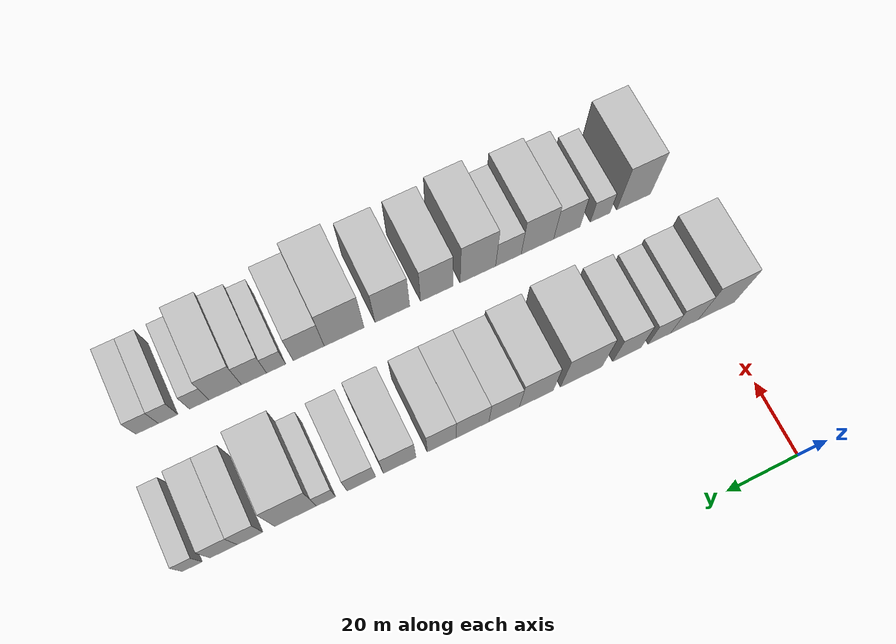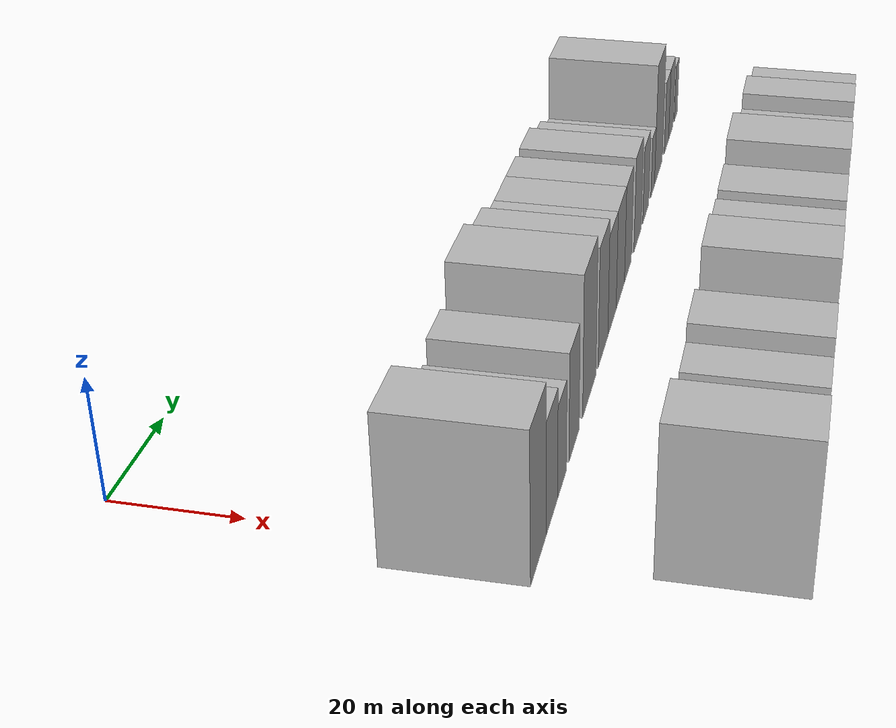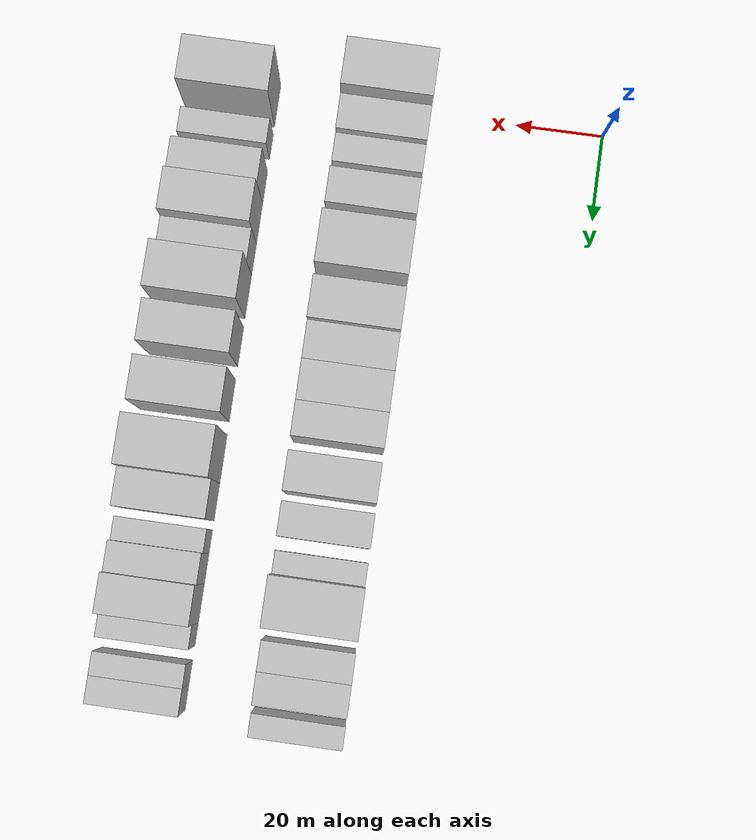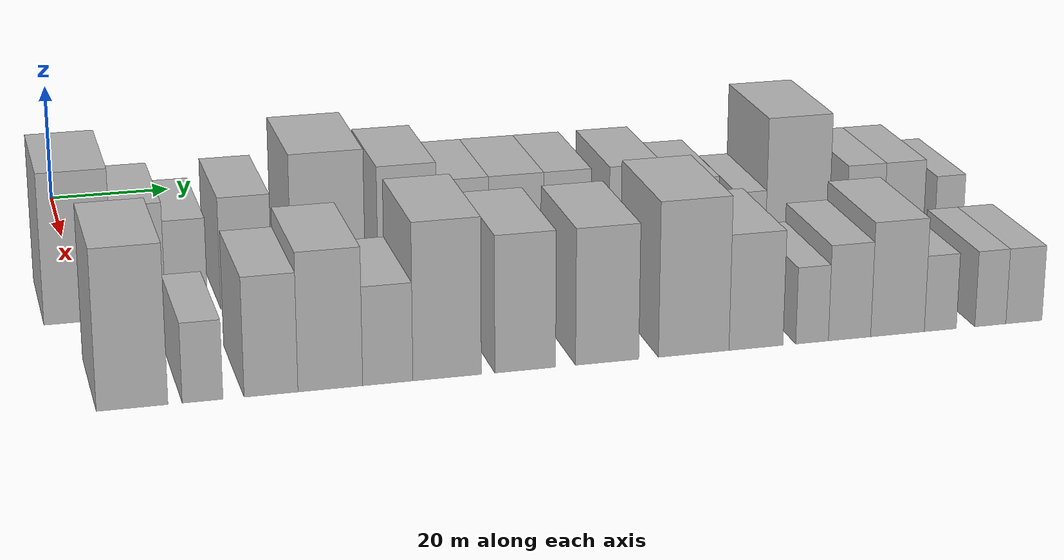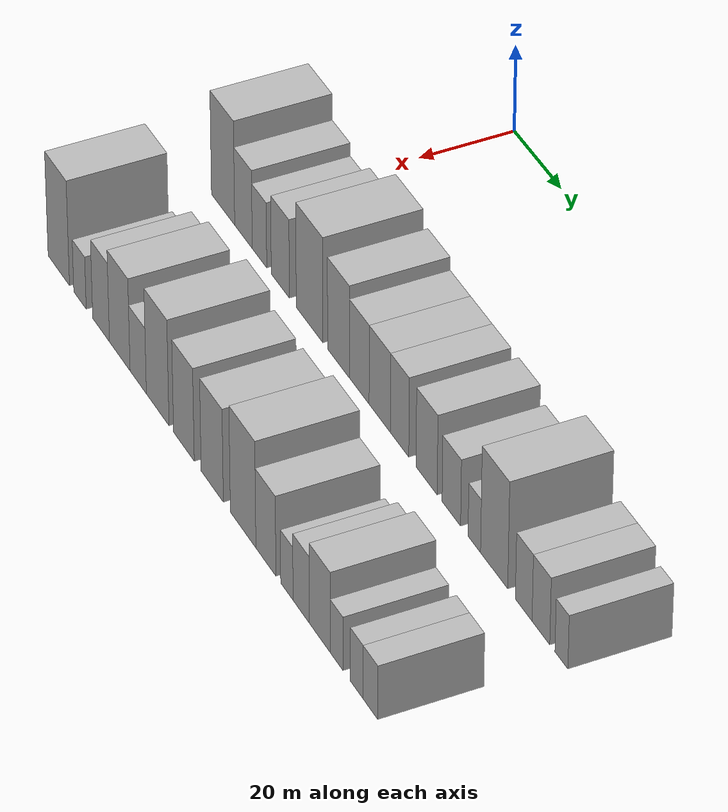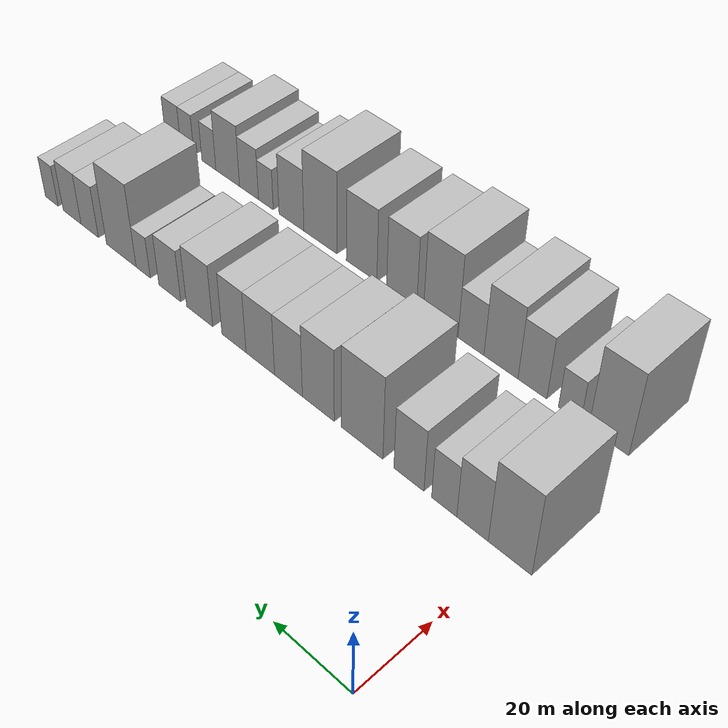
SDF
<sdf version="1.6">
 <world name="default">
  <model name="building_32">
   <static>1</static>
   <pose>50.0000 -0.8902 0 0.000000 0.000000 0.000000</pose>
   <link name="link">
    <pose>0 0 12.00 0 0 0</pose>
    <collision name="collision"><geometry><box><size>20.0000 10.5216 24.0000</size></box></geometry></collision>
    <visual name="visual">
     <cast_shadows>0</cast_shadows>
     <geometry><box><size>20.0000 10.5216 24.0000</size></box></geometry>
     <material>
      <script>
       <uri>model://HANNAS_wall/materials/scripts</uri>
       <uri>model://HANNAS_wall/materials/textures</uri>
       <name>vrc/HANNAS_wall</name>
      </script>
     </material>
    </visual>
   </link>
  </model>
  <model name="building_33">
   <static>1</static>
   <pose>50.0000 8.3077 0 0.000000 0.000000 0.000000</pose>
   <link name="link">
    <pose>0 0 9.00 0 0 0</pose>
    <collision name="collision"><geometry><box><size>20.0000 7.8744 18.0000</size></box></geometry></collision>
    <visual name="visual">
     <cast_shadows>0</cast_shadows>
     <geometry><box><size>20.0000 7.8744 18.0000</size></box></geometry>
     <material>
      <script>
       <uri>model://HANNAS_wall/materials/scripts</uri>
       <uri>model://HANNAS_wall/materials/textures</uri>
       <name>vrc/HANNAS_wall</name>
      </script>
     </material>
    </visual>
   </link>
  </model>
  <model name="building_34">
   <static>1</static>
   <pose>50.0000 15.4717 0 0.000000 0.000000 0.000000</pose>
   <link name="link">
    <pose>0 0 7.50 0 0 0</pose>
    <collision name="collision"><geometry><box><size>20.0000 6.4537 15.0000</size></box></geometry></collision>
    <visual name="visual">
     <cast_shadows>0</cast_shadows>
     <geometry><box><size>20.0000 6.4537 15.0000</size></box></geometry>
     <material>
      <script>
       <uri>model://HANNAS_wall/materials/scripts</uri>
       <uri>model://HANNAS_wall/materials/textures</uri>
       <name>vrc/HANNAS_wall</name>
      </script>
     </material>
    </visual>
   </link>
  </model>
  <model name="building_35">
   <static>1</static>
   <pose>50.0000 24.6957 0 0.000000 0.000000 0.000000</pose>
   <link name="link">
    <pose>0 0 9.00 0 0 0</pose>
    <collision name="collision"><geometry><box><size>20.0000 7.9942 18.0000</size></box></geometry></collision>
    <visual name="visual">
     <cast_shadows>0</cast_shadows>
     <geometry><box><size>20.0000 7.9942 18.0000</size></box></geometry>
     <material>
      <script>
       <uri>model://HANNAS_wall/materials/scripts</uri>
       <uri>model://HANNAS_wall/materials/textures</uri>
       <name>vrc/HANNAS_wall</name>
      </script>
     </material>
    </visual>
   </link>
  </model>
  <model name="building_36">
   <static>1</static>
   <pose>50.0000 37.4845 0 0.000000 0.000000 0.000000</pose>
   <link name="link">
    <pose>0 0 12.00 0 0 0</pose>
    <collision name="collision"><geometry><box><size>20.0000 11.5835 24.0000</size></box></geometry></collision>
    <visual name="visual">
     <cast_shadows>0</cast_shadows>
     <geometry><box><size>20.0000 11.5835 24.0000</size></box></geometry>
     <material>
      <script>
       <uri>model://HANNAS_wall/materials/scripts</uri>
       <uri>model://HANNAS_wall/materials/textures</uri>
       <name>vrc/HANNAS_wall</name>
      </script>
     </material>
    </visual>
   </link>
  </model>
  <model name="building_37">
   <static>1</static>
   <pose>50.0000 49.9310 0 0.000000 0.000000 0.000000</pose>
   <link name="link">
    <pose>0 0 10.50 0 0 0</pose>
    <collision name="collision"><geometry><box><size>20.0000 9.3095 21.0000</size></box></geometry></collision>
    <visual name="visual">
     <cast_shadows>0</cast_shadows>
     <geometry><box><size>20.0000 9.3095 21.0000</size></box></geometry>
     <material>
      <script>
       <uri>model://HANNAS_wall/materials/scripts</uri>
       <uri>model://HANNAS_wall/materials/textures</uri>
       <name>vrc/HANNAS_wall</name>
      </script>
     </material>
    </visual>
   </link>
  </model>
  <model name="building_38">
   <static>1</static>
   <pose>50.0000 58.7630 0 0.000000 0.000000 0.000000</pose>
   <link name="link">
    <pose>0 0 9.00 0 0 0</pose>
    <collision name="collision"><geometry><box><size>20.0000 8.3544 18.0000</size></box></geometry></collision>
    <visual name="visual">
     <cast_shadows>0</cast_shadows>
     <geometry><box><size>20.0000 8.3544 18.0000</size></box></geometry>
     <material>
      <script>
       <uri>model://HANNAS_wall/materials/scripts</uri>
       <uri>model://HANNAS_wall/materials/textures</uri>
       <name>vrc/HANNAS_wall</name>
      </script>
     </material>
    </visual>
   </link>
  </model>
  <model name="building_39">
   <static>1</static>
   <pose>50.0000 67.3760 0 0.000000 0.000000 0.000000</pose>
   <link name="link">
    <pose>0 0 9.00 0 0 0</pose>
    <collision name="collision"><geometry><box><size>20.0000 8.8717 18.0000</size></box></geometry></collision>
    <visual name="visual">
     <cast_shadows>0</cast_shadows>
     <geometry><box><size>20.0000 8.8717 18.0000</size></box></geometry>
     <material>
      <script>
       <uri>model://HANNAS_wall/materials/scripts</uri>
       <uri>model://HANNAS_wall/materials/textures</uri>
       <name>vrc/HANNAS_wall</name>
      </script>
     </material>
    </visual>
   </link>
  </model>
  <model name="building_40">
   <static>1</static>
   <pose>50.0000 75.6521 0 0.000000 0.000000 0.000000</pose>
   <link name="link">
    <pose>0 0 9.00 0 0 0</pose>
    <collision name="collision"><geometry><box><size>20.0000 7.6804 18.0000</size></box></geometry></collision>
    <visual name="visual">
     <cast_shadows>0</cast_shadows>
     <geometry><box><size>20.0000 7.6804 18.0000</size></box></geometry>
     <material>
      <script>
       <uri>model://HANNAS_wall/materials/scripts</uri>
       <uri>model://HANNAS_wall/materials/textures</uri>
       <name>vrc/HANNAS_wall</name>
      </script>
     </material>
    </visual>
   </link>
  </model>
  <model name="building_41">
   <static>1</static>
   <pose>50.0000 86.8144 0 0.000000 0.000000 0.000000</pose>
   <link name="link">
    <pose>0 0 9.00 0 0 0</pose>
    <collision name="collision"><geometry><box><size>20.0000 8.6443 18.0000</size></box></geometry></collision>
    <visual name="visual">
     <cast_shadows>0</cast_shadows>
     <geometry><box><size>20.0000 8.6443 18.0000</size></box></geometry>
     <material>
      <script>
       <uri>model://HANNAS_wall/materials/scripts</uri>
       <uri>model://HANNAS_wall/materials/textures</uri>
       <name>vrc/HANNAS_wall</name>
      </script>
     </material>
    </visual>
   </link>
  </model>
  <model name="building_42">
   <static>1</static>
   <pose>50.0000 96.8836 0 0.000000 0.000000 0.000000</pose>
   <link name="link">
    <pose>0 0 7.50 0 0 0</pose>
    <collision name="collision"><geometry><box><size>20.0000 7.4940 15.0000</size></box></geometry></collision>
    <visual name="visual">
     <cast_shadows>0</cast_shadows>
     <geometry><box><size>20.0000 7.4940 15.0000</size></box></geometry>
     <material>
      <script>
       <uri>model://HANNAS_wall/materials/scripts</uri>
       <uri>model://HANNAS_wall/materials/textures</uri>
       <name>vrc/HANNAS_wall</name>
      </script>
     </material>
    </visual>
   </link>
  </model>
  <model name="building_43">
   <static>1</static>
   <pose>50.0000 106.1288 0 0.000000 0.000000 0.000000</pose>
   <link name="link">
    <pose>0 0 6.00 0 0 0</pose>
    <collision name="collision"><geometry><box><size>20.0000 4.9965 12.0000</size></box></geometry></collision>
    <visual name="visual">
     <cast_shadows>0</cast_shadows>
     <geometry><box><size>20.0000 4.9965 12.0000</size></box></geometry>
     <material>
      <script>
       <uri>model://HANNAS_wall/materials/scripts</uri>
       <uri>model://HANNAS_wall/materials/textures</uri>
       <name>vrc/HANNAS_wall</name>
      </script>
     </material>
    </visual>
   </link>
  </model>
  <model name="building_44">
   <static>1</static>
   <pose>50.0000 114.0074 0 0.000000 0.000000 0.000000</pose>
   <link name="link">
    <pose>0 0 12.00 0 0 0</pose>
    <collision name="collision"><geometry><box><size>20.0000 10.7607 24.0000</size></box></geometry></collision>
    <visual name="visual">
     <cast_shadows>0</cast_shadows>
     <geometry><box><size>20.0000 10.7607 24.0000</size></box></geometry>
     <material>
      <script>
       <uri>model://HANNAS_wall/materials/scripts</uri>
       <uri>model://HANNAS_wall/materials/textures</uri>
       <name>vrc/HANNAS_wall</name>
      </script>
     </material>
    </visual>
   </link>
  </model>
  <model name="building_45">
   <static>1</static>
   <pose>50.0000 125.6424 0 0.000000 0.000000 0.000000</pose>
   <link name="link">
    <pose>0 0 7.50 0 0 0</pose>
    <collision name="collision"><geometry><box><size>20.0000 6.5093 15.0000</size></box></geometry></collision>
    <visual name="visual">
     <cast_shadows>0</cast_shadows>
     <geometry><box><size>20.0000 6.5093 15.0000</size></box></geometry>
     <material>
      <script>
       <uri>model://HANNAS_wall/materials/scripts</uri>
       <uri>model://HANNAS_wall/materials/textures</uri>
       <name>vrc/HANNAS_wall</name>
      </script>
     </material>
    </visual>
   </link>
  </model>
  <model name="building_46">
   <static>1</static>
   <pose>50.0000 132.3293 0 0.000000 0.000000 0.000000</pose>
   <link name="link">
    <pose>0 0 7.50 0 0 0</pose>
    <collision name="collision"><geometry><box><size>20.0000 6.8644 15.0000</size></box></geometry></collision>
    <visual name="visual">
     <cast_shadows>0</cast_shadows>
     <geometry><box><size>20.0000 6.8644 15.0000</size></box></geometry>
     <material>
      <script>
       <uri>model://HANNAS_wall/materials/scripts</uri>
       <uri>model://HANNAS_wall/materials/textures</uri>
       <name>vrc/HANNAS_wall</name>
      </script>
     </material>
    </visual>
   </link>
  </model>
  <model name="building_47">
   <static>1</static>
   <pose>50.0000 140.2455 0 0.000000 0.000000 0.000000</pose>
   <link name="link">
    <pose>0 0 6.00 0 0 0</pose>
    <collision name="collision"><geometry><box><size>20.0000 4.9681 12.0000</size></box></geometry></collision>
    <visual name="visual">
     <cast_shadows>0</cast_shadows>
     <geometry><box><size>20.0000 4.9681 12.0000</size></box></geometry>
     <material>
      <script>
       <uri>model://HANNAS_wall/materials/scripts</uri>
       <uri>model://HANNAS_wall/materials/textures</uri>
       <name>vrc/HANNAS_wall</name>
      </script>
     </material>
    </visual>
   </link>
  </model>
  <model name="building_97">
   <static>1</static>
   <pose>85.0000 3.2136 0 0.000000 0.000000 0.000000</pose>
   <link name="link">
    <pose>0 0 12.00 0 0 0</pose>
    <collision name="collision"><geometry><box><size>20.0000 9.9870 24.0000</size></box></geometry></collision>
    <visual name="visual">
     <cast_shadows>0</cast_shadows>
     <geometry><box><size>20.0000 9.9870 24.0000</size></box></geometry>
     <material>
      <script>
       <uri>model://HANNAS_wall/materials/scripts</uri>
       <uri>model://HANNAS_wall/materials/textures</uri>
       <name>vrc/HANNAS_wall</name>
      </script>
     </material>
    </visual>
   </link>
  </model>
  <model name="building_98">
   <static>1</static>
   <pose>85.0000 13.0778 0 0.000000 0.000000 0.000000</pose>
   <link name="link">
    <pose>0 0 6.00 0 0 0</pose>
    <collision name="collision"><geometry><box><size>20.0000 5.7414 12.0000</size></box></geometry></collision>
    <visual name="visual">
     <cast_shadows>0</cast_shadows>
     <geometry><box><size>20.0000 5.7414 12.0000</size></box></geometry>
     <material>
      <script>
       <uri>model://HANNAS_wall/materials/scripts</uri>
       <uri>model://HANNAS_wall/materials/textures</uri>
       <name>vrc/HANNAS_wall</name>
      </script>
     </material>
    </visual>
   </link>
  </model>
  <model name="building_99">
   <static>1</static>
   <pose>85.0000 22.7902 0 0.000000 0.000000 0.000000</pose>
   <link name="link">
    <pose>0 0 9.00 0 0 0</pose>
    <collision name="collision"><geometry><box><size>20.0000 7.6833 18.0000</size></box></geometry></collision>
    <visual name="visual">
     <cast_shadows>0</cast_shadows>
     <geometry><box><size>20.0000 7.6833 18.0000</size></box></geometry>
     <material>
      <script>
       <uri>model://HANNAS_wall/materials/scripts</uri>
       <uri>model://HANNAS_wall/materials/textures</uri>
       <name>vrc/HANNAS_wall</name>
      </script>
     </material>
    </visual>
   </link>
  </model>
  <model name="building_100">
   <static>1</static>
   <pose>85.0000 31.2977 0 0.000000 0.000000 0.000000</pose>
   <link name="link">
    <pose>0 0 10.50 0 0 0</pose>
    <collision name="collision"><geometry><box><size>20.0000 9.3317 21.0000</size></box></geometry></collision>
    <visual name="visual">
     <cast_shadows>0</cast_shadows>
     <geometry><box><size>20.0000 9.3317 21.0000</size></box></geometry>
     <material>
      <script>
       <uri>model://HANNAS_wall/materials/scripts</uri>
       <uri>model://HANNAS_wall/materials/textures</uri>
       <name>vrc/HANNAS_wall</name>
      </script>
     </material>
    </visual>
   </link>
  </model>
  <model name="building_101">
   <static>1</static>
   <pose>85.0000 39.6190 0 0.000000 0.000000 0.000000</pose>
   <link name="link">
    <pose>0 0 7.50 0 0 0</pose>
    <collision name="collision"><geometry><box><size>20.0000 7.3111 15.0000</size></box></geometry></collision>
    <visual name="visual">
     <cast_shadows>0</cast_shadows>
     <geometry><box><size>20.0000 7.3111 15.0000</size></box></geometry>
     <material>
      <script>
       <uri>model://HANNAS_wall/materials/scripts</uri>
       <uri>model://HANNAS_wall/materials/textures</uri>
       <name>vrc/HANNAS_wall</name>
      </script>
     </material>
    </visual>
   </link>
  </model>
  <model name="building_102">
   <static>1</static>
   <pose>85.0000 48.3078 0 0.000000 0.000000 0.000000</pose>
   <link name="link">
    <pose>0 0 12.00 0 0 0</pose>
    <collision name="collision"><geometry><box><size>20.0000 10.0664 24.0000</size></box></geometry></collision>
    <visual name="visual">
     <cast_shadows>0</cast_shadows>
     <geometry><box><size>20.0000 10.0664 24.0000</size></box></geometry>
     <material>
      <script>
       <uri>model://HANNAS_wall/materials/scripts</uri>
       <uri>model://HANNAS_wall/materials/textures</uri>
       <name>vrc/HANNAS_wall</name>
      </script>
     </material>
    </visual>
   </link>
  </model>
  <model name="building_103">
   <static>1</static>
   <pose>85.0000 59.8753 0 0.000000 0.000000 0.000000</pose>
   <link name="link">
    <pose>0 0 10.50 0 0 0</pose>
    <collision name="collision"><geometry><box><size>20.0000 9.0687 21.0000</size></box></geometry></collision>
    <visual name="visual">
     <cast_shadows>0</cast_shadows>
     <geometry><box><size>20.0000 9.0687 21.0000</size></box></geometry>
     <material>
      <script>
       <uri>model://HANNAS_wall/materials/scripts</uri>
       <uri>model://HANNAS_wall/materials/textures</uri>
       <name>vrc/HANNAS_wall</name>
      </script>
     </material>
    </visual>
   </link>
  </model>
  <model name="building_104">
   <static>1</static>
   <pose>85.0000 72.1993 0 0.000000 0.000000 0.000000</pose>
   <link name="link">
    <pose>0 0 10.50 0 0 0</pose>
    <collision name="collision"><geometry><box><size>20.0000 9.5793 21.0000</size></box></geometry></collision>
    <visual name="visual">
     <cast_shadows>0</cast_shadows>
     <geometry><box><size>20.0000 9.5793 21.0000</size></box></geometry>
     <material>
      <script>
       <uri>model://HANNAS_wall/materials/scripts</uri>
       <uri>model://HANNAS_wall/materials/textures</uri>
       <name>vrc/HANNAS_wall</name>
      </script>
     </material>
    </visual>
   </link>
  </model>
  <model name="building_105">
   <static>1</static>
   <pose>85.0000 85.4205 0 0.000000 0.000000 0.000000</pose>
   <link name="link">
    <pose>0 0 12.00 0 0 0</pose>
    <collision name="collision"><geometry><box><size>20.0000 10.8630 24.0000</size></box></geometry></collision>
    <visual name="visual">
     <cast_shadows>0</cast_shadows>
     <geometry><box><size>20.0000 10.8630 24.0000</size></box></geometry>
     <material>
      <script>
       <uri>model://HANNAS_wall/materials/scripts</uri>
       <uri>model://HANNAS_wall/materials/textures</uri>
       <name>vrc/HANNAS_wall</name>
      </script>
     </material>
    </visual>
   </link>
  </model>
  <model name="building_106">
   <static>1</static>
   <pose>85.0000 95.0516 0 0.000000 0.000000 0.000000</pose>
   <link name="link">
    <pose>0 0 9.00 0 0 0</pose>
    <collision name="collision"><geometry><box><size>20.0000 8.3993 18.0000</size></box></geometry></collision>
    <visual name="visual">
     <cast_shadows>0</cast_shadows>
     <geometry><box><size>20.0000 8.3993 18.0000</size></box></geometry>
     <material>
      <script>
       <uri>model://HANNAS_wall/materials/scripts</uri>
       <uri>model://HANNAS_wall/materials/textures</uri>
       <name>vrc/HANNAS_wall</name>
      </script>
     </material>
    </visual>
   </link>
  </model>
  <model name="building_107">
   <static>1</static>
   <pose>85.0000 103.8183 0 0.000000 0.000000 0.000000</pose>
   <link name="link">
    <pose>0 0 6.00 0 0 0</pose>
    <collision name="collision"><geometry><box><size>20.0000 5.1341 12.0000</size></box></geometry></collision>
    <visual name="visual">
     <cast_shadows>0</cast_shadows>
     <geometry><box><size>20.0000 5.1341 12.0000</size></box></geometry>
     <material>
      <script>
       <uri>model://HANNAS_wall/materials/scripts</uri>
       <uri>model://HANNAS_wall/materials/textures</uri>
       <name>vrc/HANNAS_wall</name>
      </script>
     </material>
    </visual>
   </link>
  </model>
  <model name="building_108">
   <static>1</static>
   <pose>85.0000 109.7317 0 0.000000 0.000000 0.000000</pose>
   <link name="link">
    <pose>0 0 7.50 0 0 0</pose>
    <collision name="collision"><geometry><box><size>20.0000 6.6927 15.0000</size></box></geometry></collision>
    <visual name="visual">
     <cast_shadows>0</cast_shadows>
     <geometry><box><size>20.0000 6.6927 15.0000</size></box></geometry>
     <material>
      <script>
       <uri>model://HANNAS_wall/materials/scripts</uri>
       <uri>model://HANNAS_wall/materials/textures</uri>
       <name>vrc/HANNAS_wall</name>
      </script>
     </material>
    </visual>
   </link>
  </model>
  <model name="building_109">
   <static>1</static>
   <pose>85.0000 117.3625 0 0.000000 0.000000 0.000000</pose>
   <link name="link">
    <pose>0 0 9.00 0 0 0</pose>
    <collision name="collision"><geometry><box><size>20.0000 8.5689 18.0000</size></box></geometry></collision>
    <visual name="visual">
     <cast_shadows>0</cast_shadows>
     <geometry><box><size>20.0000 8.5689 18.0000</size></box></geometry>
     <material>
      <script>
       <uri>model://HANNAS_wall/materials/scripts</uri>
       <uri>model://HANNAS_wall/materials/textures</uri>
       <name>vrc/HANNAS_wall</name>
      </script>
     </material>
    </visual>
   </link>
  </model>
  <model name="building_110">
   <static>1</static>
   <pose>85.0000 124.2242 0 0.000000 0.000000 0.000000</pose>
   <link name="link">
    <pose>0 0 6.00 0 0 0</pose>
    <collision name="collision"><geometry><box><size>20.0000 5.1545 12.0000</size></box></geometry></collision>
    <visual name="visual">
     <cast_shadows>0</cast_shadows>
     <geometry><box><size>20.0000 5.1545 12.0000</size></box></geometry>
     <material>
      <script>
       <uri>model://HANNAS_wall/materials/scripts</uri>
       <uri>model://HANNAS_wall/materials/textures</uri>
       <name>vrc/HANNAS_wall</name>
      </script>
     </material>
    </visual>
   </link>
  </model>
  <model name="building_111">
   <static>1</static>
   <pose>85.0000 132.3261 0 0.000000 0.000000 0.000000</pose>
   <link name="link">
    <pose>0 0 6.00 0 0 0</pose>
    <collision name="collision"><geometry><box><size>20.0000 5.0495 12.0000</size></box></geometry></collision>
    <visual name="visual">
     <cast_shadows>0</cast_shadows>
     <geometry><box><size>20.0000 5.0495 12.0000</size></box></geometry>
     <material>
      <script>
       <uri>model://HANNAS_wall/materials/scripts</uri>
       <uri>model://HANNAS_wall/materials/textures</uri>
       <name>vrc/HANNAS_wall</name>
      </script>
     </material>
    </visual>
   </link>
  </model>
  <model name="building_112">
   <static>1</static>
   <pose>85.0000 137.7935 0 0.000000 0.000000 0.000000</pose>
   <link name="link">
    <pose>0 0 6.00 0 0 0</pose>
    <collision name="collision"><geometry><box><size>20.0000 5.8854 12.0000</size></box></geometry></collision>
    <visual name="visual">
     <cast_shadows>0</cast_shadows>
     <geometry><box><size>20.0000 5.8854 12.0000</size></box></geometry>
     <material>
      <script>
       <uri>model://HANNAS_wall/materials/scripts</uri>
       <uri>model://HANNAS_wall/materials/textures</uri>
       <name>vrc/HANNAS_wall</name>
      </script>
     </material>
    </visual>
   </link>
  </model>
 </world>
</sdf>
